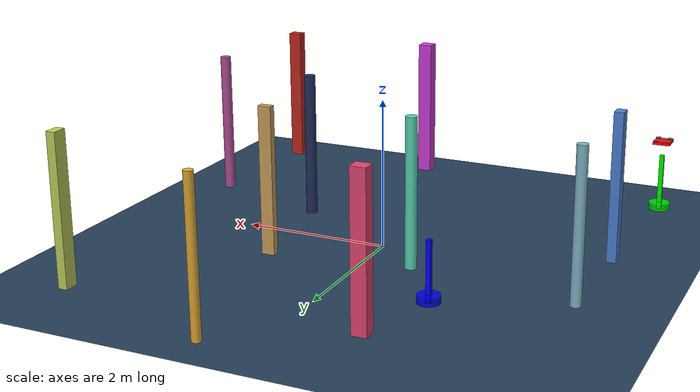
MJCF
<mujoco model="complex_uav_env">
  <compiler angle="degree" coordinate="local" inertiafromgeom="true"/>
  <option integrator="RK4" timestep="0.01"/>

  <visual>
    <headlight diffuse="0.6 0.6 0.6" ambient="0.3 0.3 0.3"/>
    <rgba haze="0.15 0.25 0.35 1"/>
    <global offwidth="2560" offheight="1440"/>
  </visual>

  <asset>
    <texture type="skybox" builtin="gradient" rgb1="0.3 0.5 0.7" rgb2="0 0 0" width="512" height="3072"/>
    <texture name="grid" type="2d" builtin="checker" rgb1="0.1 0.2 0.3" rgb2="0.2 0.3 0.4" width="512" height="512"/>
    <material name="grid" texture="grid" texrepeat="1 1" reflectance="0.2"/>
  </asset>

  <worldbody>
    <!-- Ground plane -->
    <geom name="ground" type="plane" size="4.0 4.0 0.1" material="grid"/>
    <light name="light1" pos="0 0 4" dir="0 0 -1" diffuse="1 1 1"/>

    <!-- Start position marker (green) -->
    <geom name="start_marker" type="cylinder" size="0.15 0.05" pos="-3.0 -3.0 0.05" rgba="0 1 0 0.8"/>
    <geom name="start_pole" type="box" size="0.03 0.03 0.4" pos="-3.0 -3.0 0.4" rgba="0 1 0 1"/>

    <!-- Goal position marker (blue) -->
    <geom name="goal_marker" type="cylinder" size="0.15 0.05" pos="-1.2621409261941545 1.4580719194693437 0.05" rgba="0 0 1 0.8"/>
    <geom name="goal_pole" type="box" size="0.03 0.03 0.4" pos="-1.2621409261941545 1.4580719194693437 0.4" rgba="0 0 1 1"/>

    <!-- UAV starting position -->
    <body name="chassis" pos="-3.0 -3.0 1.0">
      <joint type="free" name="root"/>
      <geom type="box" size="0.12 0.12 0.02" rgba="1.0 0.0 0.0 1.0" mass="0.8"/>

      <!-- Propeller arms and motors -->
      <geom type="box" size="0.08 0.01 0.005" pos="0 0 0.01" rgba="0.3 0.3 0.3 1"/>
      <geom type="box" size="0.01 0.08 0.005" pos="0 0 0.01" rgba="0.3 0.3 0.3 1"/>

      <!-- Motor visual geometry -->
      <geom type="cylinder" size="0.015 0.02" pos="0.08 0.08 0.015" rgba="0.2 0.2 0.2 1"/>
      <geom type="cylinder" size="0.015 0.02" pos="-0.08 0.08 0.015" rgba="0.2 0.2 0.2 1"/>
      <geom type="cylinder" size="0.015 0.02" pos="0.08 -0.08 0.015" rgba="0.2 0.2 0.2 1"/>
      <geom type="cylinder" size="0.015 0.02" pos="-0.08 -0.08 0.015" rgba="0.2 0.2 0.2 1"/>

      <!-- Propellers -->
      <geom type="cylinder" size="0.04 0.002" pos="0.08 0.08 0.035" rgba="0.7 0.7 0.7 0.8"/>
      <geom type="cylinder" size="0.04 0.002" pos="-0.08 0.08 0.035" rgba="0.7 0.7 0.7 0.8"/>
      <geom type="cylinder" size="0.04 0.002" pos="0.08 -0.08 0.035" rgba="0.7 0.7 0.7 0.8"/>
      <geom type="cylinder" size="0.04 0.002" pos="-0.08 -0.08 0.035" rgba="0.7 0.7 0.7 0.8"/>

      <!-- Sites for motor force application -->
      <site name="motor1" pos="0.08 0.08 0" size="0.01"/>
      <site name="motor2" pos="-0.08 0.08 0" size="0.01"/>
      <site name="motor3" pos="0.08 -0.08 0" size="0.01"/>
      <site name="motor4" pos="-0.08 -0.08 0" size="0.01"/>
    </body>
    <geom name="test_obs_0" type="cylinder" size="0.07755209867100137 1.0" pos="-0.6372323302233137 0.5450572085245061 1.0" rgba="0.3536013467402641 0.8512103258665813 0.7178809995975102 1.0"/>
    <geom name="test_obs_1" type="box" size="0.0995896276633439 0.09669354935064704 1.0" pos="0.7942245030416012 -3.3869670219756722 1.0" rgba="0.8129459243333952 0.2395163049590634 0.8567461574109817 1.0"/>
    <geom name="test_obs_2" type="box" size="0.09368460254084712 0.07699982437018665 1.0" pos="3.028469579027775 -3.318934598956543 1.0" rgba="0.7533857046826568 0.15890332273935118 0.12620174117409144 1.0"/>
    <geom name="test_obs_3" type="box" size="0.1005404108520001 0.08803053241108147 1.0" pos="-0.9215128324372469 2.581669522097745 1.0" rgba="0.8989005029853387 0.27291981945633637 0.4550682213235293 1.0"/>
    <geom name="test_obs_4" type="cylinder" size="0.07391840461356736 1.0" pos="3.1681391400809553 -1.361278911067313 1.0" rgba="0.7059170447972786 0.31907027563212936 0.6061768524080057 1.0"/>
    <geom name="test_obs_5" type="cylinder" size="0.06080555387441319 1.0" pos="0.6780990175262785 3.4974330840378696 1.0" rgba="0.889967126309032 0.6736089483892195 0.20218560155273613 1.0"/>
    <geom name="test_obs_6" type="box" size="0.08827091002533546 0.05071015518943668 1.0" pos="1.2442081599744228 0.8360944075117684 1.0" rgba="0.8102818992895263 0.6345823881635326 0.3674135057875575 1.0"/>
    <geom name="test_obs_7" type="box" size="0.06333800585725091 0.08629716571895123 1.0" pos="-2.912144760630206 -0.7561171764948055 1.0" rgba="0.3103235182166959 0.5062727725124633 0.849505607362392 1.0"/>
    <geom name="test_obs_8" type="cylinder" size="0.07808809724855559 1.0" pos="1.4934864394184073 -0.8278516344929783 1.0" rgba="0.13533929013332635 0.18492079619002713 0.3653829079218779 1.0"/>
    <geom name="test_obs_9" type="box" size="0.061408983620773724 0.09896845257959941 1.0" pos="2.9574461547436144 2.8270140420141283 1.0" rgba="0.7633206865700041 0.8236292863605676 0.3588943732912421 1.0"/>
    <geom name="test_obs_10" type="cylinder" size="0.07006595334404431 1.0" pos="-2.8857295082635637 0.8361124984111653 1.0" rgba="0.5231537664677548 0.7290029516137686 0.798031292421534 1.0"/>
  </worldbody>

  <actuator>
    <motor name="m1" gear="0 0 1 0 0 0" site="motor1"/>
    <motor name="m2" gear="0 0 1 0 0 0" site="motor2"/>
    <motor name="m3" gear="0 0 1 0 0 0" site="motor3"/>
    <motor name="m4" gear="0 0 1 0 0 0" site="motor4"/>
  </actuator>
</mujoco>
